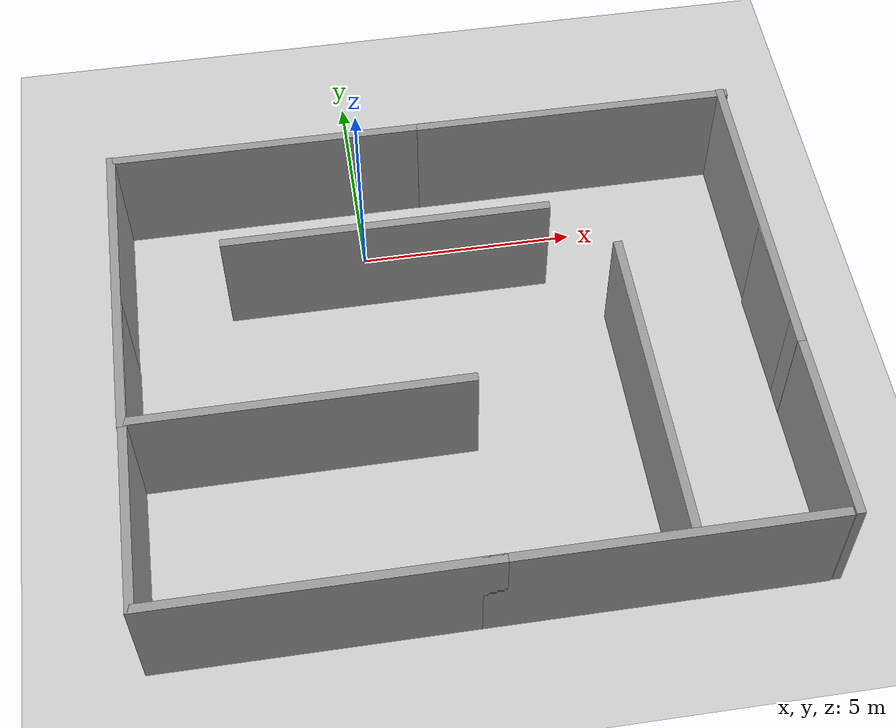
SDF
<sdf version="1.4">
 <world name="default">
  <light name="sun" type="directional">
   <pose>0 0 10 0 -0 0</pose>
   <diffuse>0.8 0.8 0.8 1</diffuse>
   <specular>0.2 0.2 0.2 1</specular>
   <attenuation>
    <range>1000</range>
    <constant>0.9</constant>
    <linear>0.01</linear>
    <quadratic>0.001</quadratic>
   </attenuation>
   <direction>-0.5 0.1 -0.9</direction>
  </light>
  <model name="ground_plane">
   <static>1</static>
   <link name="link">
    <collision name="collision">
     <geometry><plane><normal>0 0 1</normal><size>100 100</size></plane></geometry>
     <surface><friction><ode><mu>100</mu><mu2>50</mu2></ode></friction></surface>
    </collision>
    <visual name="visual">
     <cast_shadows>0</cast_shadows>
     <geometry><plane><normal>0 0 1</normal><size>100 100</size></plane></geometry>
     <material>
      <script><uri>file://media/materials/scripts/gazebo.material</uri><name>Gazebo/Grey</name></script>
     </material>
    </visual>
    <velocity_decay><linear>0</linear><angular>0</angular></velocity_decay>
   </link>
  </model>
  <physics type="ode">
   <max_step_size>0.001</max_step_size>
   <real_time_factor>1</real_time_factor>
   <real_time_update_rate>1000</real_time_update_rate>
   <gravity>0 0 -9.8</gravity>
  </physics>
  <scene><ambient>0.4 0.4 0.4 1</ambient><background>0.7 0.7 0.7 1</background><shadows>1</shadows></scene>
  <spherical_coordinates>
   <surface_model>EARTH_WGS84</surface_model>
   <latitude_deg>0</latitude_deg>
   <longitude_deg>0</longitude_deg>
   <elevation>0</elevation>
   <heading_deg>0</heading_deg>
  </spherical_coordinates>
  <model name="grey_wall">
   <static>1</static>
   <link name="link">
    <pose>0 0 1.4 0 -0 0</pose>
    <collision name="collision"><geometry><box><size>7.5 0.2 2.8</size></box></geometry></collision>
    <visual name="visual">
     <cast_shadows>0</cast_shadows>
     <geometry><box><size>7.5 0.2 2.8</size></box></geometry>
     <material>
      <script>
       <uri>model://grey_wall/materials/scripts</uri>
       <uri>model://grey_wall/materials/textures</uri>
       <name>vrc/grey_wall</name>
      </script>
     </material>
    </visual>
    <velocity_decay><linear>0</linear><angular>0</angular></velocity_decay>
   </link>
   <pose>-1.84504 1.58611 0 0 -0 0</pose>
  </model>
  <model name="grey_wall_0">
   <static>1</static>
   <link name="link">
    <pose>0 0 1.4 0 -0 0</pose>
    <collision name="collision"><geometry><box><size>7.5 0.2 2.8</size></box></geometry></collision>
    <visual name="visual">
     <cast_shadows>0</cast_shadows>
     <geometry><box><size>7.5 0.2 2.8</size></box></geometry>
     <material>
      <script>
       <uri>model://grey_wall/materials/scripts</uri>
       <uri>model://grey_wall/materials/textures</uri>
       <name>vrc/grey_wall</name>
      </script>
     </material>
    </visual>
    <velocity_decay><linear>0</linear><angular>0</angular></velocity_decay>
   </link>
   <pose>5.27661 1.58174 0 0 -0 0</pose>
  </model>
  <model name="grey_wall_1">
   <static>1</static>
   <link name="link">
    <pose>0 0 1.4 0 -0 0</pose>
    <collision name="collision"><geometry><box><size>7.5 0.2 2.8</size></box></geometry></collision>
    <visual name="visual">
     <cast_shadows>0</cast_shadows>
     <geometry><box><size>7.5 0.2 2.8</size></box></geometry>
     <material>
      <script>
       <uri>model://grey_wall/materials/scripts</uri>
       <uri>model://grey_wall/materials/textures</uri>
       <name>vrc/grey_wall</name>
      </script>
     </material>
    </visual>
    <velocity_decay><linear>0</linear><angular>0</angular></velocity_decay>
   </link>
   <pose>-2 -10 0 0 -0 0</pose>
  </model>
  <model name="grey_wall_2">
   <static>1</static>
   <link name="link">
    <pose>0 0 1.4 0 -0 0</pose>
    <collision name="collision"><geometry><box><size>7.5 0.2 2.8</size></box></geometry></collision>
    <visual name="visual">
     <cast_shadows>0</cast_shadows>
     <geometry><box><size>7.5 0.2 2.8</size></box></geometry>
     <material>
      <script>
       <uri>model://grey_wall/materials/scripts</uri>
       <uri>model://grey_wall/materials/textures</uri>
       <name>vrc/grey_wall</name>
      </script>
     </material>
    </visual>
    <velocity_decay><linear>0</linear><angular>0</angular></velocity_decay>
   </link>
   <pose>5 -10 0 0 -0 0</pose>
  </model>
  <model name="grey_wall_3">
   <static>1</static>
   <link name="link">
    <pose>0 0 1.4 0 -0 0</pose>
    <collision name="collision"><geometry><box><size>7.5 0.2 2.8</size></box></geometry></collision>
    <visual name="visual">
     <cast_shadows>0</cast_shadows>
     <geometry><box><size>7.5 0.2 2.8</size></box></geometry>
     <material>
      <script>
       <uri>model://grey_wall/materials/scripts</uri>
       <uri>model://grey_wall/materials/textures</uri>
       <name>vrc/grey_wall</name>
      </script>
     </material>
    </visual>
    <velocity_decay><linear>0</linear><angular>0</angular></velocity_decay>
   </link>
   <pose>-5.64143 -2.05172 0 0 -0 1.5682</pose>
  </model>
  <model name="grey_wall_4">
   <static>1</static>
   <link name="link">
    <pose>0 0 1.4 0 -0 0</pose>
    <collision name="collision"><geometry><box><size>7.5 0.2 2.8</size></box></geometry></collision>
    <visual name="visual">
     <cast_shadows>0</cast_shadows>
     <geometry><box><size>7.5 0.2 2.8</size></box></geometry>
     <material>
      <script>
       <uri>model://grey_wall/materials/scripts</uri>
       <uri>model://grey_wall/materials/textures</uri>
       <name>vrc/grey_wall</name>
      </script>
     </material>
    </visual>
    <velocity_decay><linear>0</linear><angular>0</angular></velocity_decay>
   </link>
   <pose>-5.63517 -6.33198 0 0 -0 1.56755</pose>
  </model>
  <model name="grey_wall_5">
   <static>1</static>
   <link name="link">
    <pose>0 0 1.4 0 -0 0</pose>
    <collision name="collision"><geometry><box><size>7.5 0.2 2.8</size></box></geometry></collision>
    <visual name="visual">
     <cast_shadows>0</cast_shadows>
     <geometry><box><size>7.5 0.2 2.8</size></box></geometry>
     <material>
      <script>
       <uri>model://grey_wall/materials/scripts</uri>
       <uri>model://grey_wall/materials/textures</uri>
       <name>vrc/grey_wall</name>
      </script>
     </material>
    </visual>
    <velocity_decay><linear>0</linear><angular>0</angular></velocity_decay>
   </link>
   <pose>8.85575 -2.04356 0 0 -0 1.56663</pose>
  </model>
  <model name="grey_wall_6">
   <static>1</static>
   <link name="link">
    <pose>0 0 1.4 0 -0 0</pose>
    <collision name="collision"><geometry><box><size>7.5 0.2 2.8</size></box></geometry></collision>
    <visual name="visual">
     <cast_shadows>0</cast_shadows>
     <geometry><box><size>7.5 0.2 2.8</size></box></geometry>
     <material>
      <script>
       <uri>model://grey_wall/materials/scripts</uri>
       <uri>model://grey_wall/materials/textures</uri>
       <name>vrc/grey_wall</name>
      </script>
     </material>
    </visual>
    <velocity_decay><linear>0</linear><angular>0</angular></velocity_decay>
   </link>
   <pose>8.8519 -6.33227 0 0 -0 1.57886</pose>
  </model>
  <model name="grey_wall_7">
   <static>1</static>
   <link name="link">
    <pose>0 0 1.4 0 -0 0</pose>
    <collision name="collision"><geometry><box><size>7.5 0.2 2.8</size></box></geometry></collision>
    <visual name="visual">
     <cast_shadows>0</cast_shadows>
     <geometry><box><size>7.5 0.2 2.8</size></box></geometry>
     <material>
      <script>
       <uri>model://grey_wall/materials/scripts</uri>
       <uri>model://grey_wall/materials/textures</uri>
       <name>vrc/grey_wall</name>
      </script>
     </material>
    </visual>
    <velocity_decay><linear>0</linear><angular>0</angular></velocity_decay>
   </link>
   <pose>0.446751 -1.23078 0 0 -0 0</pose>
  </model>
  <model name="grey_wall_8">
   <static>1</static>
   <link name="link">
    <pose>0 0 1.4 0 -0 0</pose>
    <collision name="collision"><geometry><box><size>7.5 0.2 2.8</size></box></geometry></collision>
    <visual name="visual">
     <cast_shadows>0</cast_shadows>
     <geometry><box><size>7.5 0.2 2.8</size></box></geometry>
     <material>
      <script>
       <uri>model://grey_wall/materials/scripts</uri>
       <uri>model://grey_wall/materials/textures</uri>
       <name>vrc/grey_wall</name>
      </script>
     </material>
    </visual>
    <velocity_decay><linear>0</linear><angular>0</angular></velocity_decay>
   </link>
   <pose>5.52799 -6.26808 0 0 -0 1.57826</pose>
  </model>
  <model name="grey_wall_9">
   <static>1</static>
   <link name="link">
    <pose>0 0 1.4 0 -0 0</pose>
    <collision name="collision"><geometry><box><size>7.5 0.2 2.8</size></box></geometry></collision>
    <visual name="visual">
     <cast_shadows>0</cast_shadows>
     <geometry><box><size>7.5 0.2 2.8</size></box></geometry>
     <material>
      <script>
       <uri>model://grey_wall/materials/scripts</uri>
       <uri>model://grey_wall/materials/textures</uri>
       <name>vrc/grey_wall</name>
      </script>
     </material>
    </visual>
    <velocity_decay><linear>0</linear><angular>0</angular></velocity_decay>
   </link>
   <pose>-1.9045 -5.66841 0 0 -0 0.001741</pose>
  </model>
 </world>
</sdf>
